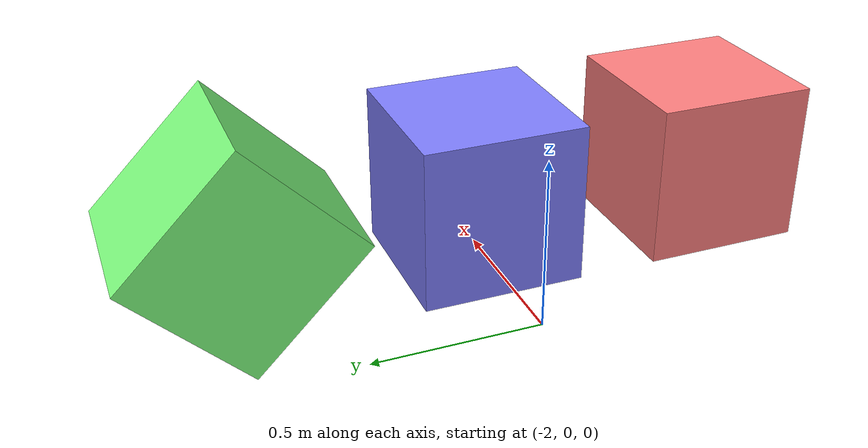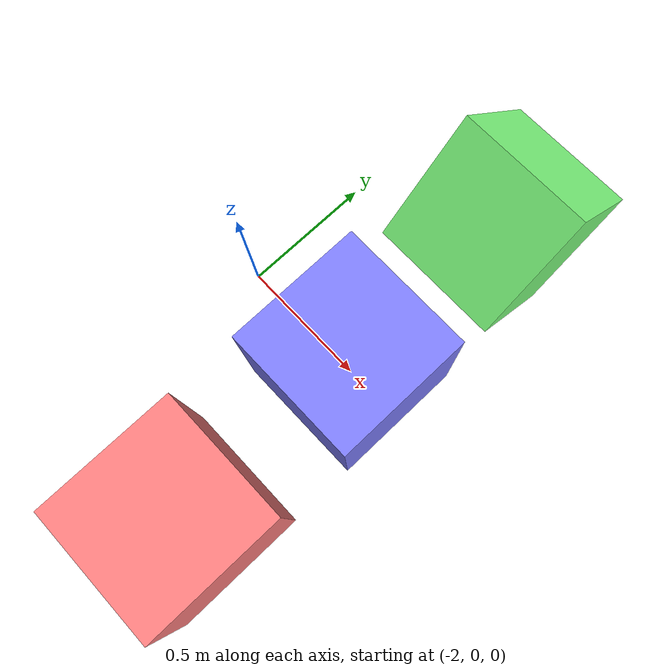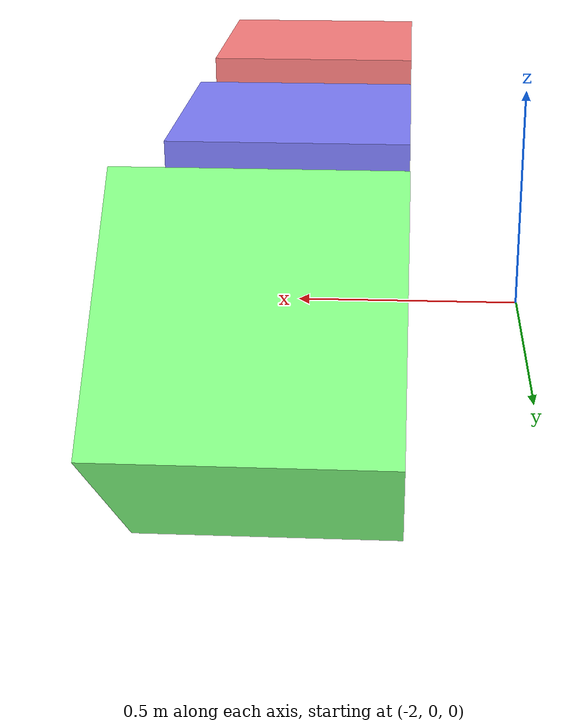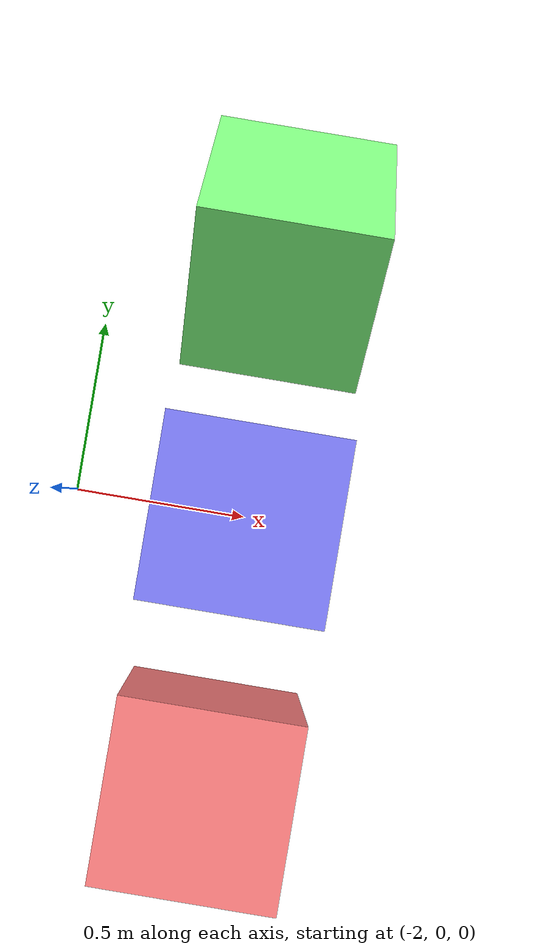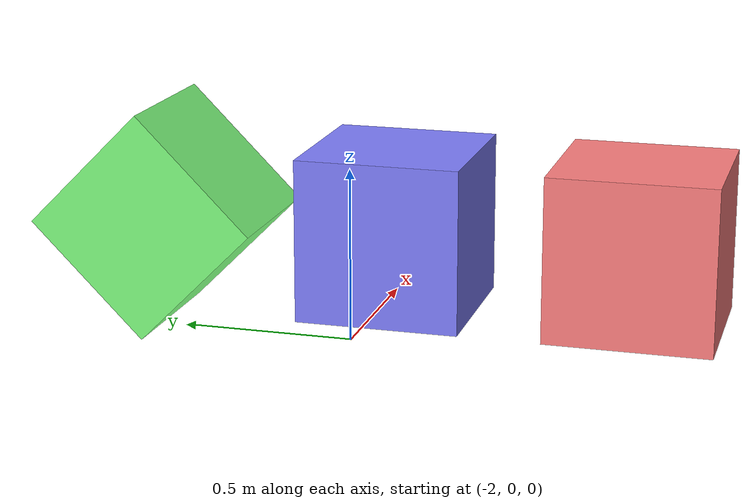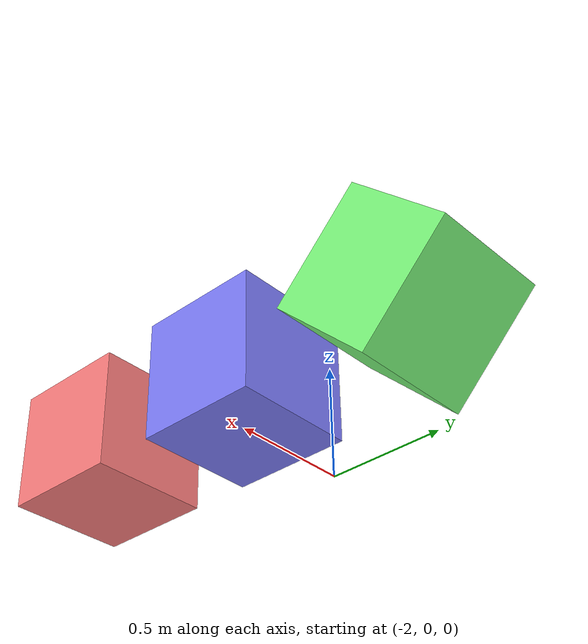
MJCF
<mujoco>
    <include file="models/settings.xml" />
    <visual>
        <rgba haze="0.15 0.25 0.35 1"/>
        <global azimuth="-20" elevation="-20" ellipsoidinertia="true"/>
        <map znear="0.01" zfar="100"/>
    </visual>

    <asset>
        <texture name="skybox" type="skybox" builtin="gradient" rgb1="0.3 0.5 0.7" rgb2="0 0 0" width="512" height="3072"/>
        <texture type="2d" name="groundplane" builtin="checker" mark="edge" rgb1="0.2 0.3 0.4" rgb2="0.1 0.2 0.3" markrgb="0.8 0.8 0.8" width="300" height="300"/>
        <material name="groundplane" texture="groundplane" texuniform="true" texrepeat="5 5" reflectance="0.2"/>

        <texture type="2d" name="blue_stripes" builtin="checker" rgb1="0 0 1" rgb2="1 1 1" width="300" height="300"/>
        <material name="blue" texture="blue_stripes" texuniform="true" texrepeat="10 10" reflectance="0.2"/>

        <texture type="2d" name="green_stripes" builtin="checker" rgb1="0 1 0" rgb2="1 1 1" width="300" height="300"/>
        <material name="green" texture="green_stripes" texuniform="true" texrepeat="5 5" reflectance="0.2"/>

        <texture type="2d" name="red_stripes" builtin="checker" rgb1="1 0 0" rgb2="1 1 1" width="300" height="300"/>
        <material name="red" texture="red_stripes" texuniform="true" texrepeat="19 19" reflectance="0.2"/>
    </asset>

    <worldbody>
        <light pos="0 0 1.5" dir="0 0 -1" directional="true"/>
        <camera pos="0 0 0" euler="90 90 0" fovy="80" />
        <body name="body" pos="-0.5 0 0">
            <geom name="box1" type="box" size="0.25 0.25 0.25" pos="-1 0 0.2" condim="1" material="blue" />
            <geom name="box2" type="box" size="0.25 0.25 0.25" pos="-1 0.75 0.2" condim="1" material="green" euler="45 0 0"/>
            <geom name="box3" type="box" size="0.25 0.25 0.25" pos="-1 -0.75 0.2" condim="1" material="red" euler="90 0 0"/>
        </body>
    </worldbody>
</mujoco>

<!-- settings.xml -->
<mujoco>
    <compiler assetdir="models/assets" angle="degree" coordinate="local" inertiafromgeom="true" />
</mujoco>
